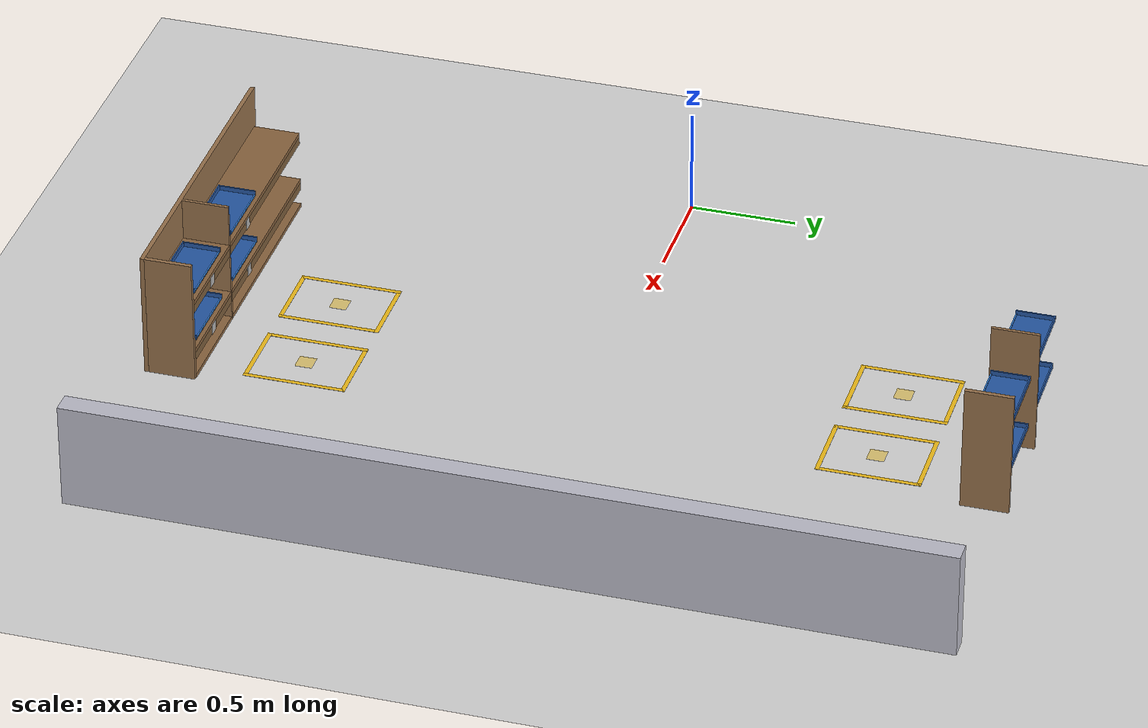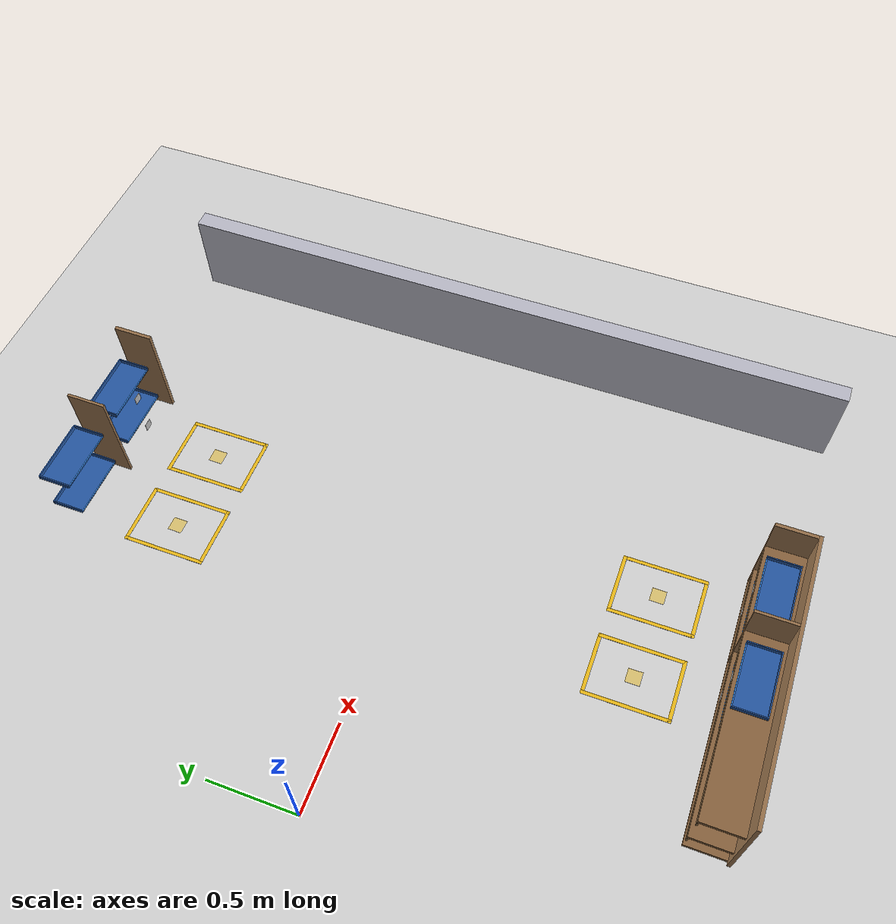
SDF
<sdf version="1.6">
 <world name="warehouse">
  <model name="ground_plane">
   <static>true</static>
   <link name="link">
    <collision name="col">
     <geometry><plane><normal>0 0 1</normal><size>10.0 6.0</size></plane></geometry>
     <surface><friction><ode><mu>1.0</mu><mu2>1.0</mu2></ode></friction></surface>
    </collision>
    <visual name="vis">
     <cast_shadows>false</cast_shadows>
     <geometry><plane><normal>0 0 1</normal><size>10.0 6.0</size></plane></geometry>
     <material><ambient>0.85 0.85 0.85 1</ambient><diffuse>0.85 0.85 0.85 1</diffuse></material>
    </visual>
   </link>
  </model>
  <model name="wall_east">
   <static>true</static>
   <pose>3.0500 0.0000 0.2500 0.000000 0.000000 0.000000</pose>
   <link name="link">
    <collision name="col">
     <geometry><box><size>0.1 4.0 0.5</size></box></geometry>
     <surface><friction><ode><mu>1.0</mu><mu2>1.0</mu2></ode></friction></surface>
    </collision>
    <visual name="vis">
     <cast_shadows>false</cast_shadows>
     <geometry><box><size>0.1 4.0 0.5</size></box></geometry>
     <material><ambient>0.75 0.75 0.80 1.0</ambient><diffuse>0.75 0.75 0.80 1.0</diffuse></material>
    </visual>
   </link>
  </model>
  <model name="rack_a_right_side">
   <static>true</static>
   <pose>2.0100 1.8700 0.3000 0.000000 0.000000 0.000000</pose>
   <link name="link">
    <collision name="col">
     <geometry><box><size>0.02 0.22 0.6</size></box></geometry>
     <surface><friction><ode><mu>0.5</mu><mu2>0.5</mu2></ode></friction></surface>
    </collision>
    <visual name="vis">
     <cast_shadows>false</cast_shadows>
     <geometry><box><size>0.02 0.22 0.6</size></box></geometry>
     <material><ambient>0.6 0.45 0.30 1.0</ambient><diffuse>0.6 0.45 0.30 1.0</diffuse></material>
    </visual>
   </link>
  </model>
  <model name="rack_a_divider_1">
   <static>true</static>
   <pose>1.5000 1.8700 0.3000 0.000000 0.000000 0.000000</pose>
   <link name="link">
    <collision name="col">
     <geometry><box><size>0.015 0.22 0.6</size></box></geometry>
     <surface><friction><ode><mu>0.5</mu><mu2>0.5</mu2></ode></friction></surface>
    </collision>
    <visual name="vis">
     <cast_shadows>false</cast_shadows>
     <geometry><box><size>0.015 0.22 0.6</size></box></geometry>
     <material><ambient>0.6 0.45 0.30 1.0</ambient><diffuse>0.6 0.45 0.30 1.0</diffuse></material>
    </visual>
   </link>
  </model>
  <model name="tag_slot_2">
   <static>true</static>
   <pose>1.7500 1.7590 0.1100 0.000000 0.000000 3.141593</pose>
   <link name="link">
    <collision name="col"><geometry><box><size>0.05 0.001 0.05</size></box></geometry></collision>
    <visual name="vis">
     <cast_shadows>false</cast_shadows>
     <geometry><box><size>0.05 0.001 0.05</size></box></geometry>
     <material>
      <script>
       <uri>model://aruco_tags/materials/scripts</uri>
       <uri>model://aruco_tags/materials/textures</uri>
       <name>Aruco/Tag2</name>
      </script>
     </material>
    </visual>
   </link>
  </model>
  <model name="tag_slot_5">
   <static>true</static>
   <pose>1.7500 1.7590 0.3600 0.000000 0.000000 3.141593</pose>
   <link name="link">
    <collision name="col"><geometry><box><size>0.05 0.001 0.05</size></box></geometry></collision>
    <visual name="vis">
     <cast_shadows>false</cast_shadows>
     <geometry><box><size>0.05 0.001 0.05</size></box></geometry>
     <material>
      <script>
       <uri>model://aruco_tags/materials/scripts</uri>
       <uri>model://aruco_tags/materials/textures</uri>
       <name>Aruco/Tag5</name>
      </script>
     </material>
    </visual>
   </link>
  </model>
  <model name="shelf_tray_1">
   <static>true</static>
   <pose>1.2500 1.8700 0.1500 0.000000 0.000000 0.000000</pose>
   <link name="link">
    <visual name="bottom_vis">
     <pose>0 0 0.001 0 0 0</pose>
     <geometry><box><size>0.36 0.18 0.002</size></box></geometry>
     <material><ambient>0.15 0.35 0.65 1.0</ambient><diffuse>0.15 0.35 0.65 1.0</diffuse></material>
    </visual>
    <visual name="back_wall_vis">
     <pose>0 0.087 0.012 0 0 0</pose>
     <geometry><box><size>0.36 0.006 0.024</size></box></geometry>
     <material><ambient>0.15 0.35 0.65 1.0</ambient><diffuse>0.15 0.35 0.65 1.0</diffuse></material>
    </visual>
    <visual name="left_wall_vis">
     <pose>-0.177 0 0.012 0 0 0</pose>
     <geometry><box><size>0.006 0.18 0.024</size></box></geometry>
     <material><ambient>0.15 0.35 0.65 1.0</ambient><diffuse>0.15 0.35 0.65 1.0</diffuse></material>
    </visual>
    <visual name="right_wall_vis">
     <pose>0.177 0 0.012 0 0 0</pose>
     <geometry><box><size>0.006 0.18 0.024</size></box></geometry>
     <material><ambient>0.15 0.35 0.65 1.0</ambient><diffuse>0.15 0.35 0.65 1.0</diffuse></material>
    </visual>
    <visual name="front_lip_vis">
     <pose>0 -0.087 0.004 0 0 0</pose>
     <geometry><box><size>0.36 0.006 0.008</size></box></geometry>
     <material><ambient>0.20 0.50 0.85 1.0</ambient><diffuse>0.20 0.50 0.85 1.0</diffuse></material>
    </visual>
    <collision name="back_col">
     <pose>0 0.087 0.012 0 0 0</pose>
     <geometry><box><size>0.36 0.006 0.024</size></box></geometry>
    </collision>
    <collision name="left_col">
     <pose>-0.177 0 0.012 0 0 0</pose>
     <geometry><box><size>0.006 0.18 0.024</size></box></geometry>
    </collision>
    <collision name="right_col">
     <pose>0.177 0 0.012 0 0 0</pose>
     <geometry><box><size>0.006 0.18 0.024</size></box></geometry>
    </collision>
   </link>
  </model>
  <model name="shelf_tray_2">
   <static>true</static>
   <pose>1.7500 1.8700 0.1500 0.000000 0.000000 0.000000</pose>
   <link name="link">
    <visual name="bottom_vis">
     <pose>0 0 0.001 0 0 0</pose>
     <geometry><box><size>0.36 0.18 0.002</size></box></geometry>
     <material><ambient>0.15 0.35 0.65 1.0</ambient><diffuse>0.15 0.35 0.65 1.0</diffuse></material>
    </visual>
    <visual name="back_wall_vis">
     <pose>0 0.087 0.012 0 0 0</pose>
     <geometry><box><size>0.36 0.006 0.024</size></box></geometry>
     <material><ambient>0.15 0.35 0.65 1.0</ambient><diffuse>0.15 0.35 0.65 1.0</diffuse></material>
    </visual>
    <visual name="left_wall_vis">
     <pose>-0.177 0 0.012 0 0 0</pose>
     <geometry><box><size>0.006 0.18 0.024</size></box></geometry>
     <material><ambient>0.15 0.35 0.65 1.0</ambient><diffuse>0.15 0.35 0.65 1.0</diffuse></material>
    </visual>
    <visual name="right_wall_vis">
     <pose>0.177 0 0.012 0 0 0</pose>
     <geometry><box><size>0.006 0.18 0.024</size></box></geometry>
     <material><ambient>0.15 0.35 0.65 1.0</ambient><diffuse>0.15 0.35 0.65 1.0</diffuse></material>
    </visual>
    <visual name="front_lip_vis">
     <pose>0 -0.087 0.004 0 0 0</pose>
     <geometry><box><size>0.36 0.006 0.008</size></box></geometry>
     <material><ambient>0.20 0.50 0.85 1.0</ambient><diffuse>0.20 0.50 0.85 1.0</diffuse></material>
    </visual>
    <collision name="back_col">
     <pose>0 0.087 0.012 0 0 0</pose>
     <geometry><box><size>0.36 0.006 0.024</size></box></geometry>
    </collision>
    <collision name="left_col">
     <pose>-0.177 0 0.012 0 0 0</pose>
     <geometry><box><size>0.006 0.18 0.024</size></box></geometry>
    </collision>
    <collision name="right_col">
     <pose>0.177 0 0.012 0 0 0</pose>
     <geometry><box><size>0.006 0.18 0.024</size></box></geometry>
    </collision>
   </link>
  </model>
  <model name="shelf_tray_4">
   <static>true</static>
   <pose>1.2500 1.8700 0.4000 0.000000 0.000000 0.000000</pose>
   <link name="link">
    <visual name="bottom_vis">
     <pose>0 0 0.001 0 0 0</pose>
     <geometry><box><size>0.36 0.18 0.002</size></box></geometry>
     <material><ambient>0.15 0.35 0.65 1.0</ambient><diffuse>0.15 0.35 0.65 1.0</diffuse></material>
    </visual>
    <visual name="back_wall_vis">
     <pose>0 0.087 0.012 0 0 0</pose>
     <geometry><box><size>0.36 0.006 0.024</size></box></geometry>
     <material><ambient>0.15 0.35 0.65 1.0</ambient><diffuse>0.15 0.35 0.65 1.0</diffuse></material>
    </visual>
    <visual name="left_wall_vis">
     <pose>-0.177 0 0.012 0 0 0</pose>
     <geometry><box><size>0.006 0.18 0.024</size></box></geometry>
     <material><ambient>0.15 0.35 0.65 1.0</ambient><diffuse>0.15 0.35 0.65 1.0</diffuse></material>
    </visual>
    <visual name="right_wall_vis">
     <pose>0.177 0 0.012 0 0 0</pose>
     <geometry><box><size>0.006 0.18 0.024</size></box></geometry>
     <material><ambient>0.15 0.35 0.65 1.0</ambient><diffuse>0.15 0.35 0.65 1.0</diffuse></material>
    </visual>
    <visual name="front_lip_vis">
     <pose>0 -0.087 0.004 0 0 0</pose>
     <geometry><box><size>0.36 0.006 0.008</size></box></geometry>
     <material><ambient>0.20 0.50 0.85 1.0</ambient><diffuse>0.20 0.50 0.85 1.0</diffuse></material>
    </visual>
    <collision name="back_col">
     <pose>0 0.087 0.012 0 0 0</pose>
     <geometry><box><size>0.36 0.006 0.024</size></box></geometry>
    </collision>
    <collision name="left_col">
     <pose>-0.177 0 0.012 0 0 0</pose>
     <geometry><box><size>0.006 0.18 0.024</size></box></geometry>
    </collision>
    <collision name="right_col">
     <pose>0.177 0 0.012 0 0 0</pose>
     <geometry><box><size>0.006 0.18 0.024</size></box></geometry>
    </collision>
   </link>
  </model>
  <model name="shelf_tray_5">
   <static>true</static>
   <pose>1.7500 1.8700 0.4000 0.000000 0.000000 0.000000</pose>
   <link name="link">
    <visual name="bottom_vis">
     <pose>0 0 0.001 0 0 0</pose>
     <geometry><box><size>0.36 0.18 0.002</size></box></geometry>
     <material><ambient>0.15 0.35 0.65 1.0</ambient><diffuse>0.15 0.35 0.65 1.0</diffuse></material>
    </visual>
    <visual name="back_wall_vis">
     <pose>0 0.087 0.012 0 0 0</pose>
     <geometry><box><size>0.36 0.006 0.024</size></box></geometry>
     <material><ambient>0.15 0.35 0.65 1.0</ambient><diffuse>0.15 0.35 0.65 1.0</diffuse></material>
    </visual>
    <visual name="left_wall_vis">
     <pose>-0.177 0 0.012 0 0 0</pose>
     <geometry><box><size>0.006 0.18 0.024</size></box></geometry>
     <material><ambient>0.15 0.35 0.65 1.0</ambient><diffuse>0.15 0.35 0.65 1.0</diffuse></material>
    </visual>
    <visual name="right_wall_vis">
     <pose>0.177 0 0.012 0 0 0</pose>
     <geometry><box><size>0.006 0.18 0.024</size></box></geometry>
     <material><ambient>0.15 0.35 0.65 1.0</ambient><diffuse>0.15 0.35 0.65 1.0</diffuse></material>
    </visual>
    <visual name="front_lip_vis">
     <pose>0 -0.087 0.004 0 0 0</pose>
     <geometry><box><size>0.36 0.006 0.008</size></box></geometry>
     <material><ambient>0.20 0.50 0.85 1.0</ambient><diffuse>0.20 0.50 0.85 1.0</diffuse></material>
    </visual>
    <collision name="back_col">
     <pose>0 0.087 0.012 0 0 0</pose>
     <geometry><box><size>0.36 0.006 0.024</size></box></geometry>
    </collision>
    <collision name="left_col">
     <pose>-0.177 0 0.012 0 0 0</pose>
     <geometry><box><size>0.006 0.18 0.024</size></box></geometry>
    </collision>
    <collision name="right_col">
     <pose>0.177 0 0.012 0 0 0</pose>
     <geometry><box><size>0.006 0.18 0.024</size></box></geometry>
    </collision>
   </link>
  </model>
  <model name="rack_b_back_wall">
   <static>true</static>
   <pose>1.2500 -1.9900 0.3000 0.000000 0.000000 0.000000</pose>
   <link name="link">
    <collision name="col">
     <geometry><box><size>1.54 0.02 0.6</size></box></geometry>
     <surface><friction><ode><mu>0.5</mu><mu2>0.5</mu2></ode></friction></surface>
    </collision>
    <visual name="vis">
     <cast_shadows>false</cast_shadows>
     <geometry><box><size>1.54 0.02 0.6</size></box></geometry>
     <material><ambient>0.6 0.45 0.30 1.0</ambient><diffuse>0.6 0.45 0.30 1.0</diffuse></material>
    </visual>
   </link>
  </model>
  <model name="rack_b_level_1_plank">
   <static>true</static>
   <pose>1.2500 -1.8700 0.1400 0.000000 0.000000 0.000000</pose>
   <link name="link">
    <collision name="col">
     <geometry><box><size>1.5 0.22 0.02</size></box></geometry>
     <surface><friction><ode><mu>0.7</mu><mu2>0.7</mu2></ode></friction></surface>
    </collision>
    <visual name="vis">
     <cast_shadows>false</cast_shadows>
     <geometry><box><size>1.5 0.22 0.02</size></box></geometry>
     <material><ambient>0.55 0.40 0.25 1.0</ambient><diffuse>0.55 0.40 0.25 1.0</diffuse></material>
    </visual>
   </link>
  </model>
  <model name="rack_b_level_2_plank">
   <static>true</static>
   <pose>1.2500 -1.8700 0.3900 0.000000 0.000000 0.000000</pose>
   <link name="link">
    <collision name="col">
     <geometry><box><size>1.5 0.22 0.02</size></box></geometry>
     <surface><friction><ode><mu>0.7</mu><mu2>0.7</mu2></ode></friction></surface>
    </collision>
    <visual name="vis">
     <cast_shadows>false</cast_shadows>
     <geometry><box><size>1.5 0.22 0.02</size></box></geometry>
     <material><ambient>0.55 0.40 0.25 1.0</ambient><diffuse>0.55 0.40 0.25 1.0</diffuse></material>
    </visual>
   </link>
  </model>
  <model name="rack_b_floor_plank">
   <static>true</static>
   <pose>1.2500 -1.8700 0.0050 0.000000 0.000000 0.000000</pose>
   <link name="link">
    <collision name="col">
     <geometry><box><size>1.5 0.22 0.02</size></box></geometry>
     <surface><friction><ode><mu>0.7</mu><mu2>0.7</mu2></ode></friction></surface>
    </collision>
    <visual name="vis">
     <cast_shadows>false</cast_shadows>
     <geometry><box><size>1.5 0.22 0.02</size></box></geometry>
     <material><ambient>0.55 0.40 0.25 1.0</ambient><diffuse>0.55 0.40 0.25 1.0</diffuse></material>
    </visual>
   </link>
  </model>
  <model name="rack_b_right_side">
   <static>true</static>
   <pose>2.0100 -1.8700 0.3000 0.000000 0.000000 0.000000</pose>
   <link name="link">
    <collision name="col">
     <geometry><box><size>0.02 0.22 0.6</size></box></geometry>
     <surface><friction><ode><mu>0.5</mu><mu2>0.5</mu2></ode></friction></surface>
    </collision>
    <visual name="vis">
     <cast_shadows>false</cast_shadows>
     <geometry><box><size>0.02 0.22 0.6</size></box></geometry>
     <material><ambient>0.6 0.45 0.30 1.0</ambient><diffuse>0.6 0.45 0.30 1.0</diffuse></material>
    </visual>
   </link>
  </model>
  <model name="rack_b_divider_1">
   <static>true</static>
   <pose>1.5000 -1.8700 0.3000 0.000000 0.000000 0.000000</pose>
   <link name="link">
    <collision name="col">
     <geometry><box><size>0.015 0.22 0.6</size></box></geometry>
     <surface><friction><ode><mu>0.5</mu><mu2>0.5</mu2></ode></friction></surface>
    </collision>
    <visual name="vis">
     <cast_shadows>false</cast_shadows>
     <geometry><box><size>0.015 0.22 0.6</size></box></geometry>
     <material><ambient>0.6 0.45 0.30 1.0</ambient><diffuse>0.6 0.45 0.30 1.0</diffuse></material>
    </visual>
   </link>
  </model>
  <model name="rack_b_level_1_front_beam">
   <static>true</static>
   <pose>1.2500 -1.7650 0.1100 0.000000 0.000000 0.000000</pose>
   <link name="link">
    <visual name="vis">
     <cast_shadows>false</cast_shadows>
     <geometry><box><size>1.5 0.01 0.04</size></box></geometry>
     <material><ambient>0.50 0.38 0.24 1.0</ambient><diffuse>0.50 0.38 0.24 1.0</diffuse></material>
    </visual>
   </link>
  </model>
  <model name="rack_b_level_2_front_beam">
   <static>true</static>
   <pose>1.2500 -1.7650 0.3600 0.000000 0.000000 0.000000</pose>
   <link name="link">
    <visual name="vis">
     <cast_shadows>false</cast_shadows>
     <geometry><box><size>1.5 0.01 0.04</size></box></geometry>
     <material><ambient>0.50 0.38 0.24 1.0</ambient><diffuse>0.50 0.38 0.24 1.0</diffuse></material>
    </visual>
   </link>
  </model>
  <model name="tag_slot_7">
   <static>true</static>
   <pose>1.2500 -1.7590 0.1100 0.000000 0.000000 0.000000</pose>
   <link name="link">
    <collision name="col"><geometry><box><size>0.05 0.001 0.05</size></box></geometry></collision>
    <visual name="vis">
     <cast_shadows>false</cast_shadows>
     <geometry><box><size>0.05 0.001 0.05</size></box></geometry>
     <material>
      <script>
       <uri>model://aruco_tags/materials/scripts</uri>
       <uri>model://aruco_tags/materials/textures</uri>
       <name>Aruco/Tag7</name>
      </script>
     </material>
    </visual>
   </link>
  </model>
  <model name="tag_slot_8">
   <static>true</static>
   <pose>1.7500 -1.7590 0.1100 0.000000 0.000000 0.000000</pose>
   <link name="link">
    <collision name="col"><geometry><box><size>0.05 0.001 0.05</size></box></geometry></collision>
    <visual name="vis">
     <cast_shadows>false</cast_shadows>
     <geometry><box><size>0.05 0.001 0.05</size></box></geometry>
     <material>
      <script>
       <uri>model://aruco_tags/materials/scripts</uri>
       <uri>model://aruco_tags/materials/textures</uri>
       <name>Aruco/Tag8</name>
      </script>
     </material>
    </visual>
   </link>
  </model>
  <model name="tag_slot_10">
   <static>true</static>
   <pose>1.2500 -1.7590 0.3600 0.000000 0.000000 0.000000</pose>
   <link name="link">
    <collision name="col"><geometry><box><size>0.05 0.001 0.05</size></box></geometry></collision>
    <visual name="vis">
     <cast_shadows>false</cast_shadows>
     <geometry><box><size>0.05 0.001 0.05</size></box></geometry>
     <material>
      <script>
       <uri>model://aruco_tags/materials/scripts</uri>
       <uri>model://aruco_tags/materials/textures</uri>
       <name>Aruco/Tag10</name>
      </script>
     </material>
    </visual>
   </link>
  </model>
  <model name="tag_slot_11">
   <static>true</static>
   <pose>1.7500 -1.7590 0.3600 0.000000 0.000000 0.000000</pose>
   <link name="link">
    <collision name="col"><geometry><box><size>0.05 0.001 0.05</size></box></geometry></collision>
    <visual name="vis">
     <cast_shadows>false</cast_shadows>
     <geometry><box><size>0.05 0.001 0.05</size></box></geometry>
     <material>
      <script>
       <uri>model://aruco_tags/materials/scripts</uri>
       <uri>model://aruco_tags/materials/textures</uri>
       <name>Aruco/Tag11</name>
      </script>
     </material>
    </visual>
   </link>
  </model>
  <model name="shelf_tray_7">
   <static>true</static>
   <pose>1.2500 -1.8700 0.1500 0.000000 0.000000 0.000000</pose>
   <link name="link">
    <visual name="bottom_vis">
     <pose>0 0 0.001 0 0 0</pose>
     <geometry><box><size>0.36 0.18 0.002</size></box></geometry>
     <material><ambient>0.15 0.35 0.65 1.0</ambient><diffuse>0.15 0.35 0.65 1.0</diffuse></material>
    </visual>
    <visual name="back_wall_vis">
     <pose>0 -0.087 0.012 0 0 0</pose>
     <geometry><box><size>0.36 0.006 0.024</size></box></geometry>
     <material><ambient>0.15 0.35 0.65 1.0</ambient><diffuse>0.15 0.35 0.65 1.0</diffuse></material>
    </visual>
    <visual name="left_wall_vis">
     <pose>-0.177 0 0.012 0 0 0</pose>
     <geometry><box><size>0.006 0.18 0.024</size></box></geometry>
     <material><ambient>0.15 0.35 0.65 1.0</ambient><diffuse>0.15 0.35 0.65 1.0</diffuse></material>
    </visual>
    <visual name="right_wall_vis">
     <pose>0.177 0 0.012 0 0 0</pose>
     <geometry><box><size>0.006 0.18 0.024</size></box></geometry>
     <material><ambient>0.15 0.35 0.65 1.0</ambient><diffuse>0.15 0.35 0.65 1.0</diffuse></material>
    </visual>
    <visual name="front_lip_vis">
     <pose>0 0.087 0.004 0 0 0</pose>
     <geometry><box><size>0.36 0.006 0.008</size></box></geometry>
     <material><ambient>0.20 0.50 0.85 1.0</ambient><diffuse>0.20 0.50 0.85 1.0</diffuse></material>
    </visual>
    <collision name="back_col">
     <pose>0 -0.087 0.012 0 0 0</pose>
     <geometry><box><size>0.36 0.006 0.024</size></box></geometry>
    </collision>
    <collision name="left_col">
     <pose>-0.177 0 0.012 0 0 0</pose>
     <geometry><box><size>0.006 0.18 0.024</size></box></geometry>
    </collision>
    <collision name="right_col">
     <pose>0.177 0 0.012 0 0 0</pose>
     <geometry><box><size>0.006 0.18 0.024</size></box></geometry>
    </collision>
   </link>
  </model>
  <model name="shelf_tray_8">
   <static>true</static>
   <pose>1.7500 -1.8700 0.1500 0.000000 0.000000 0.000000</pose>
   <link name="link">
    <visual name="bottom_vis">
     <pose>0 0 0.001 0 0 0</pose>
     <geometry><box><size>0.36 0.18 0.002</size></box></geometry>
     <material><ambient>0.15 0.35 0.65 1.0</ambient><diffuse>0.15 0.35 0.65 1.0</diffuse></material>
    </visual>
    <visual name="back_wall_vis">
     <pose>0 -0.087 0.012 0 0 0</pose>
     <geometry><box><size>0.36 0.006 0.024</size></box></geometry>
     <material><ambient>0.15 0.35 0.65 1.0</ambient><diffuse>0.15 0.35 0.65 1.0</diffuse></material>
    </visual>
    <visual name="left_wall_vis">
     <pose>-0.177 0 0.012 0 0 0</pose>
     <geometry><box><size>0.006 0.18 0.024</size></box></geometry>
     <material><ambient>0.15 0.35 0.65 1.0</ambient><diffuse>0.15 0.35 0.65 1.0</diffuse></material>
    </visual>
    <visual name="right_wall_vis">
     <pose>0.177 0 0.012 0 0 0</pose>
     <geometry><box><size>0.006 0.18 0.024</size></box></geometry>
     <material><ambient>0.15 0.35 0.65 1.0</ambient><diffuse>0.15 0.35 0.65 1.0</diffuse></material>
    </visual>
    <visual name="front_lip_vis">
     <pose>0 0.087 0.004 0 0 0</pose>
     <geometry><box><size>0.36 0.006 0.008</size></box></geometry>
     <material><ambient>0.20 0.50 0.85 1.0</ambient><diffuse>0.20 0.50 0.85 1.0</diffuse></material>
    </visual>
    <collision name="back_col">
     <pose>0 -0.087 0.012 0 0 0</pose>
     <geometry><box><size>0.36 0.006 0.024</size></box></geometry>
    </collision>
    <collision name="left_col">
     <pose>-0.177 0 0.012 0 0 0</pose>
     <geometry><box><size>0.006 0.18 0.024</size></box></geometry>
    </collision>
    <collision name="right_col">
     <pose>0.177 0 0.012 0 0 0</pose>
     <geometry><box><size>0.006 0.18 0.024</size></box></geometry>
    </collision>
   </link>
  </model>
  <model name="shelf_tray_10">
   <static>true</static>
   <pose>1.2500 -1.8700 0.4000 0.000000 0.000000 0.000000</pose>
   <link name="link">
    <visual name="bottom_vis">
     <pose>0 0 0.001 0 0 0</pose>
     <geometry><box><size>0.36 0.18 0.002</size></box></geometry>
     <material><ambient>0.15 0.35 0.65 1.0</ambient><diffuse>0.15 0.35 0.65 1.0</diffuse></material>
    </visual>
    <visual name="back_wall_vis">
     <pose>0 -0.087 0.012 0 0 0</pose>
     <geometry><box><size>0.36 0.006 0.024</size></box></geometry>
     <material><ambient>0.15 0.35 0.65 1.0</ambient><diffuse>0.15 0.35 0.65 1.0</diffuse></material>
    </visual>
    <visual name="left_wall_vis">
     <pose>-0.177 0 0.012 0 0 0</pose>
     <geometry><box><size>0.006 0.18 0.024</size></box></geometry>
     <material><ambient>0.15 0.35 0.65 1.0</ambient><diffuse>0.15 0.35 0.65 1.0</diffuse></material>
    </visual>
    <visual name="right_wall_vis">
     <pose>0.177 0 0.012 0 0 0</pose>
     <geometry><box><size>0.006 0.18 0.024</size></box></geometry>
     <material><ambient>0.15 0.35 0.65 1.0</ambient><diffuse>0.15 0.35 0.65 1.0</diffuse></material>
    </visual>
    <visual name="front_lip_vis">
     <pose>0 0.087 0.004 0 0 0</pose>
     <geometry><box><size>0.36 0.006 0.008</size></box></geometry>
     <material><ambient>0.20 0.50 0.85 1.0</ambient><diffuse>0.20 0.50 0.85 1.0</diffuse></material>
    </visual>
    <collision name="back_col">
     <pose>0 -0.087 0.012 0 0 0</pose>
     <geometry><box><size>0.36 0.006 0.024</size></box></geometry>
    </collision>
    <collision name="left_col">
     <pose>-0.177 0 0.012 0 0 0</pose>
     <geometry><box><size>0.006 0.18 0.024</size></box></geometry>
    </collision>
    <collision name="right_col">
     <pose>0.177 0 0.012 0 0 0</pose>
     <geometry><box><size>0.006 0.18 0.024</size></box></geometry>
    </collision>
   </link>
  </model>
  <model name="shelf_tray_11">
   <static>true</static>
   <pose>1.7500 -1.8700 0.4000 0.000000 0.000000 0.000000</pose>
   <link name="link">
    <visual name="bottom_vis">
     <pose>0 0 0.001 0 0 0</pose>
     <geometry><box><size>0.36 0.18 0.002</size></box></geometry>
     <material><ambient>0.15 0.35 0.65 1.0</ambient><diffuse>0.15 0.35 0.65 1.0</diffuse></material>
    </visual>
    <visual name="back_wall_vis">
     <pose>0 -0.087 0.012 0 0 0</pose>
     <geometry><box><size>0.36 0.006 0.024</size></box></geometry>
     <material><ambient>0.15 0.35 0.65 1.0</ambient><diffuse>0.15 0.35 0.65 1.0</diffuse></material>
    </visual>
    <visual name="left_wall_vis">
     <pose>-0.177 0 0.012 0 0 0</pose>
     <geometry><box><size>0.006 0.18 0.024</size></box></geometry>
     <material><ambient>0.15 0.35 0.65 1.0</ambient><diffuse>0.15 0.35 0.65 1.0</diffuse></material>
    </visual>
    <visual name="right_wall_vis">
     <pose>0.177 0 0.012 0 0 0</pose>
     <geometry><box><size>0.006 0.18 0.024</size></box></geometry>
     <material><ambient>0.15 0.35 0.65 1.0</ambient><diffuse>0.15 0.35 0.65 1.0</diffuse></material>
    </visual>
    <visual name="front_lip_vis">
     <pose>0 0.087 0.004 0 0 0</pose>
     <geometry><box><size>0.36 0.006 0.008</size></box></geometry>
     <material><ambient>0.20 0.50 0.85 1.0</ambient><diffuse>0.20 0.50 0.85 1.0</diffuse></material>
    </visual>
    <collision name="back_col">
     <pose>0 -0.087 0.012 0 0 0</pose>
     <geometry><box><size>0.36 0.006 0.024</size></box></geometry>
    </collision>
    <collision name="left_col">
     <pose>-0.177 0 0.012 0 0 0</pose>
     <geometry><box><size>0.006 0.18 0.024</size></box></geometry>
    </collision>
    <collision name="right_col">
     <pose>0.177 0 0.012 0 0 0</pose>
     <geometry><box><size>0.006 0.18 0.024</size></box></geometry>
    </collision>
   </link>
  </model>
  <model name="docking_bay_rack_a_col_1">
   <static>true</static>
   <pose>1.2500 1.3250 0.0010 0.000000 0.000000 0.000000</pose>
   <link name="link">
    <visual name="border_front">
     <pose>0 0.22999999999999998 0 0 0 0</pose>
     <cast_shadows>false</cast_shadows>
     <geometry><box><size>0.36 0.02 0.001</size></box></geometry>
     <material><ambient>0.95 0.75 0.1 0.9</ambient><diffuse>0.95 0.75 0.1 0.9</diffuse></material>
    </visual>
    <visual name="border_back">
     <pose>0 -0.22999999999999998 0 0 0 0</pose>
     <cast_shadows>false</cast_shadows>
     <geometry><box><size>0.36 0.02 0.001</size></box></geometry>
     <material><ambient>0.95 0.75 0.1 0.9</ambient><diffuse>0.95 0.75 0.1 0.9</diffuse></material>
    </visual>
    <visual name="border_left">
     <pose>-0.16999999999999998 0 0 0 0 0</pose>
     <cast_shadows>false</cast_shadows>
     <geometry><box><size>0.02 0.48 0.001</size></box></geometry>
     <material><ambient>0.95 0.75 0.1 0.9</ambient><diffuse>0.95 0.75 0.1 0.9</diffuse></material>
    </visual>
    <visual name="border_right">
     <pose>0.16999999999999998 0 0 0 0 0</pose>
     <cast_shadows>false</cast_shadows>
     <geometry><box><size>0.02 0.48 0.001</size></box></geometry>
     <material><ambient>0.95 0.75 0.1 0.9</ambient><diffuse>0.95 0.75 0.1 0.9</diffuse></material>
    </visual>
    <visual name="center_mark">
     <cast_shadows>false</cast_shadows>
     <geometry><box><size>0.08 0.08 0.001</size></box></geometry>
     <material><ambient>0.95 0.75 0.1 0.5</ambient><diffuse>0.95 0.75 0.1 0.5</diffuse></material>
    </visual>
   </link>
  </model>
  <model name="docking_bay_rack_a_col_2">
   <static>true</static>
   <pose>1.7500 1.3250 0.0010 0.000000 0.000000 0.000000</pose>
   <link name="link">
    <visual name="border_front">
     <pose>0 0.22999999999999998 0 0 0 0</pose>
     <cast_shadows>false</cast_shadows>
     <geometry><box><size>0.36 0.02 0.001</size></box></geometry>
     <material><ambient>0.95 0.75 0.1 0.9</ambient><diffuse>0.95 0.75 0.1 0.9</diffuse></material>
    </visual>
    <visual name="border_back">
     <pose>0 -0.22999999999999998 0 0 0 0</pose>
     <cast_shadows>false</cast_shadows>
     <geometry><box><size>0.36 0.02 0.001</size></box></geometry>
     <material><ambient>0.95 0.75 0.1 0.9</ambient><diffuse>0.95 0.75 0.1 0.9</diffuse></material>
    </visual>
    <visual name="border_left">
     <pose>-0.16999999999999998 0 0 0 0 0</pose>
     <cast_shadows>false</cast_shadows>
     <geometry><box><size>0.02 0.48 0.001</size></box></geometry>
     <material><ambient>0.95 0.75 0.1 0.9</ambient><diffuse>0.95 0.75 0.1 0.9</diffuse></material>
    </visual>
    <visual name="border_right">
     <pose>0.16999999999999998 0 0 0 0 0</pose>
     <cast_shadows>false</cast_shadows>
     <geometry><box><size>0.02 0.48 0.001</size></box></geometry>
     <material><ambient>0.95 0.75 0.1 0.9</ambient><diffuse>0.95 0.75 0.1 0.9</diffuse></material>
    </visual>
    <visual name="center_mark">
     <cast_shadows>false</cast_shadows>
     <geometry><box><size>0.08 0.08 0.001</size></box></geometry>
     <material><ambient>0.95 0.75 0.1 0.5</ambient><diffuse>0.95 0.75 0.1 0.5</diffuse></material>
    </visual>
   </link>
  </model>
  <model name="docking_bay_rack_b_col_1">
   <static>true</static>
   <pose>1.2500 -1.3250 0.0010 0.000000 0.000000 0.000000</pose>
   <link name="link">
    <visual name="border_front">
     <pose>0 0.22999999999999998 0 0 0 0</pose>
     <cast_shadows>false</cast_shadows>
     <geometry><box><size>0.36 0.02 0.001</size></box></geometry>
     <material><ambient>0.95 0.75 0.1 0.9</ambient><diffuse>0.95 0.75 0.1 0.9</diffuse></material>
    </visual>
    <visual name="border_back">
     <pose>0 -0.22999999999999998 0 0 0 0</pose>
     <cast_shadows>false</cast_shadows>
     <geometry><box><size>0.36 0.02 0.001</size></box></geometry>
     <material><ambient>0.95 0.75 0.1 0.9</ambient><diffuse>0.95 0.75 0.1 0.9</diffuse></material>
    </visual>
    <visual name="border_left">
     <pose>-0.16999999999999998 0 0 0 0 0</pose>
     <cast_shadows>false</cast_shadows>
     <geometry><box><size>0.02 0.48 0.001</size></box></geometry>
     <material><ambient>0.95 0.75 0.1 0.9</ambient><diffuse>0.95 0.75 0.1 0.9</diffuse></material>
    </visual>
    <visual name="border_right">
     <pose>0.16999999999999998 0 0 0 0 0</pose>
     <cast_shadows>false</cast_shadows>
     <geometry><box><size>0.02 0.48 0.001</size></box></geometry>
     <material><ambient>0.95 0.75 0.1 0.9</ambient><diffuse>0.95 0.75 0.1 0.9</diffuse></material>
    </visual>
    <visual name="center_mark">
     <cast_shadows>false</cast_shadows>
     <geometry><box><size>0.08 0.08 0.001</size></box></geometry>
     <material><ambient>0.95 0.75 0.1 0.5</ambient><diffuse>0.95 0.75 0.1 0.5</diffuse></material>
    </visual>
   </link>
  </model>
  <model name="docking_bay_rack_b_col_2">
   <static>true</static>
   <pose>1.7500 -1.3250 0.0010 0.000000 0.000000 0.000000</pose>
   <link name="link">
    <visual name="border_front">
     <pose>0 0.22999999999999998 0 0 0 0</pose>
     <cast_shadows>false</cast_shadows>
     <geometry><box><size>0.36 0.02 0.001</size></box></geometry>
     <material><ambient>0.95 0.75 0.1 0.9</ambient><diffuse>0.95 0.75 0.1 0.9</diffuse></material>
    </visual>
    <visual name="border_back">
     <pose>0 -0.22999999999999998 0 0 0 0</pose>
     <cast_shadows>false</cast_shadows>
     <geometry><box><size>0.36 0.02 0.001</size></box></geometry>
     <material><ambient>0.95 0.75 0.1 0.9</ambient><diffuse>0.95 0.75 0.1 0.9</diffuse></material>
    </visual>
    <visual name="border_left">
     <pose>-0.16999999999999998 0 0 0 0 0</pose>
     <cast_shadows>false</cast_shadows>
     <geometry><box><size>0.02 0.48 0.001</size></box></geometry>
     <material><ambient>0.95 0.75 0.1 0.9</ambient><diffuse>0.95 0.75 0.1 0.9</diffuse></material>
    </visual>
    <visual name="border_right">
     <pose>0.16999999999999998 0 0 0 0 0</pose>
     <cast_shadows>false</cast_shadows>
     <geometry><box><size>0.02 0.48 0.001</size></box></geometry>
     <material><ambient>0.95 0.75 0.1 0.9</ambient><diffuse>0.95 0.75 0.1 0.9</diffuse></material>
    </visual>
    <visual name="center_mark">
     <cast_shadows>false</cast_shadows>
     <geometry><box><size>0.08 0.08 0.001</size></box></geometry>
     <material><ambient>0.95 0.75 0.1 0.5</ambient><diffuse>0.95 0.75 0.1 0.5</diffuse></material>
    </visual>
   </link>
  </model>
 </world>
</sdf>
